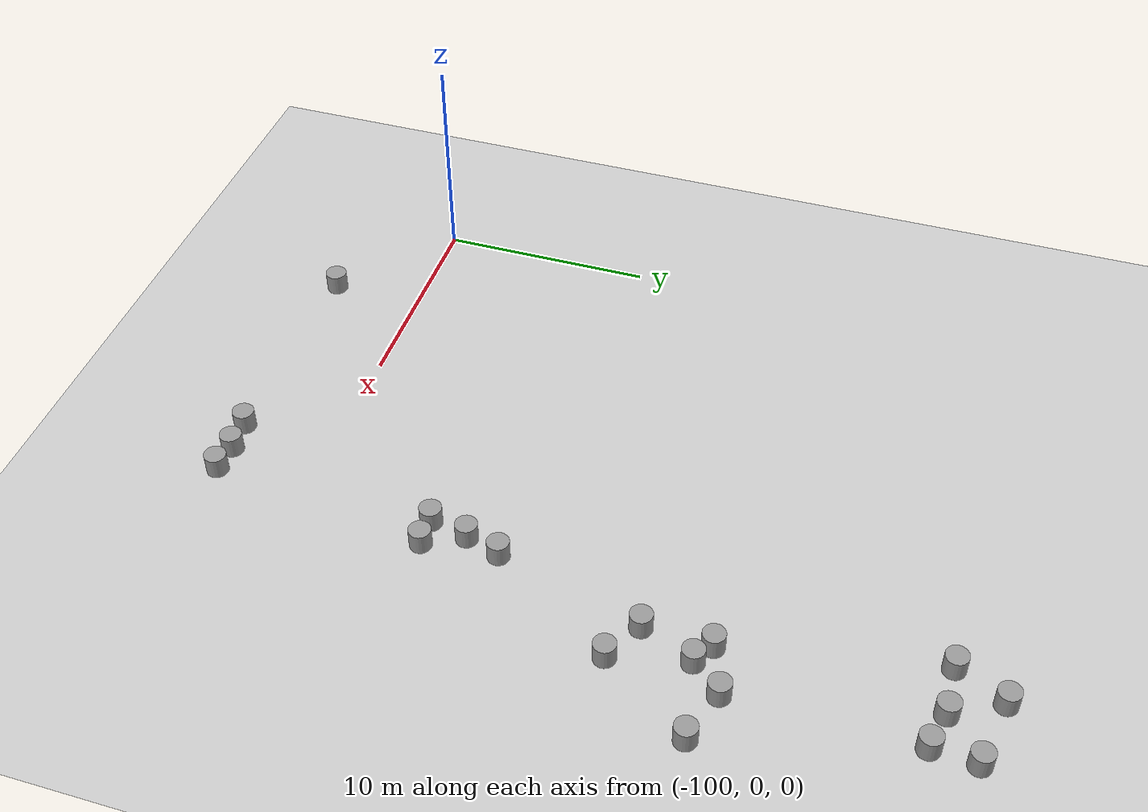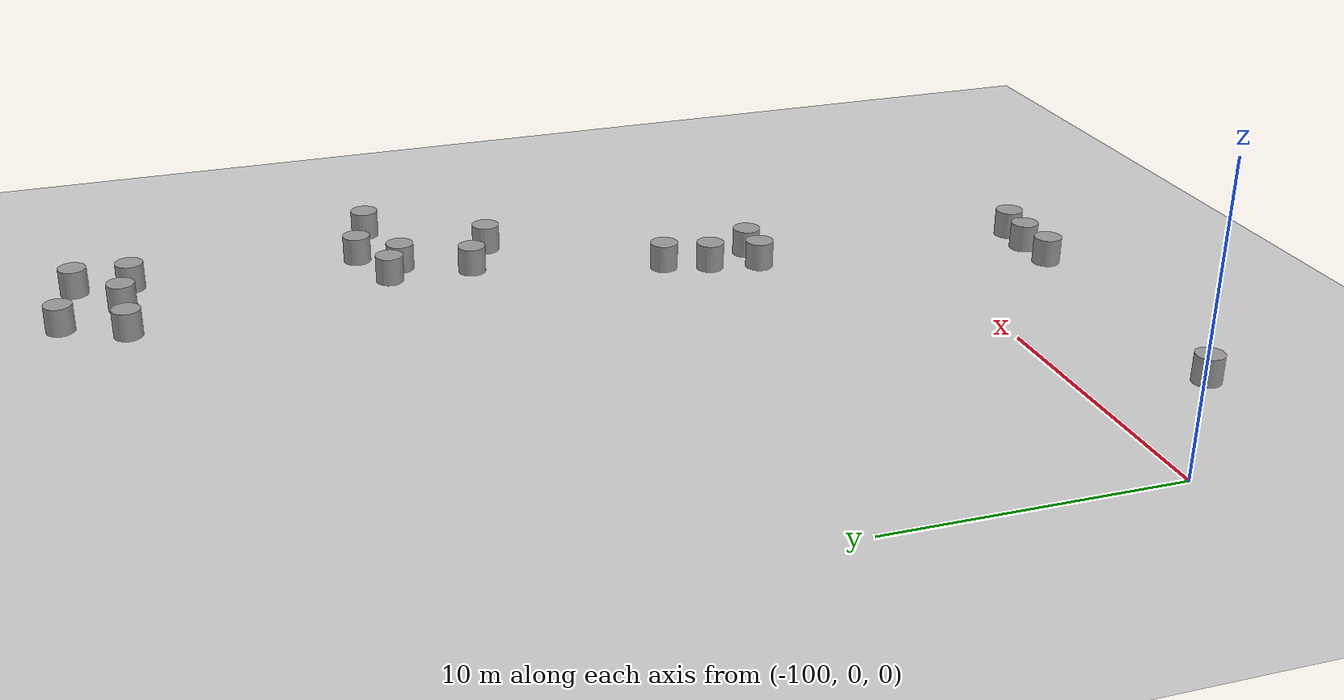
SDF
<sdf version="1.7">
 <world name="default">
  <model name="ground_plane">
   <static>1</static>
   <link name="link">
    <collision name="collision">
     <geometry><plane><normal>0 0 1</normal><size>300 300</size></plane></geometry>
     <surface><friction><ode><mu>100</mu><mu2>50</mu2></ode></friction></surface>
    </collision>
    <visual name="visual">
     <cast_shadows>0</cast_shadows>
     <geometry><plane><normal>0 0 1</normal><size>300 300</size></plane></geometry>
     <material>
      <script><uri>file://media/materials/scripts/gazebo.material</uri><name>Gazebo/Grey</name></script>
     </material>
    </visual>
   </link>
  </model>
  <model name="unit_cylinder_28">
   <pose>-78.2745 28.5454 0.499883 0 -0 0</pose>
   <link name="link">
    <inertial>
     <mass>1</mass>
     <inertia><ixx>0.145833</ixx><ixy>0</ixy><ixz>0</ixz><iyy>0.145833</iyy><iyz>0</iyz><izz>0.125</izz></inertia>
    </inertial>
    <collision name="collision">
     <geometry><cylinder><radius>0.5</radius><length>1</length></cylinder></geometry>
    </collision>
    <visual name="visual">
     <geometry><cylinder><radius>0.5</radius><length>1</length></cylinder></geometry>
     <material>
      <script><name>Gazebo/Grey</name><uri>file://media/materials/scripts/gazebo.material</uri></script>
     </material>
    </visual>
   </link>
  </model>
  <model name="unit_cylinder_29">
   <pose>-79.4438 30.6994 0.499883 0 -0 0</pose>
   <link name="link">
    <inertial>
     <mass>1</mass>
     <inertia><ixx>0.145833</ixx><ixy>0</ixy><ixz>0</ixz><iyy>0.145833</iyy><iyz>0</iyz><izz>0.125</izz></inertia>
    </inertial>
    <collision name="collision">
     <geometry><cylinder><radius>0.5</radius><length>1</length></cylinder></geometry>
    </collision>
    <visual name="visual">
     <geometry><cylinder><radius>0.5</radius><length>1</length></cylinder></geometry>
     <material>
      <script><name>Gazebo/Grey</name><uri>file://media/materials/scripts/gazebo.material</uri></script>
     </material>
    </visual>
   </link>
  </model>
  <model name="unit_cylinder_31">
   <pose>-78.7694 16.1385 0.499883 0 -0 -0.002985</pose>
   <link name="link">
    <inertial>
     <mass>1</mass>
     <inertia><ixx>0.145833</ixx><ixy>0</ixy><ixz>0</ixz><iyy>0.145833</iyy><iyz>0</iyz><izz>0.125</izz></inertia>
    </inertial>
    <collision name="collision">
     <geometry><cylinder><radius>0.5</radius><length>1</length></cylinder></geometry>
    </collision>
    <visual name="visual">
     <geometry><cylinder><radius>0.5</radius><length>1</length></cylinder></geometry>
     <material>
      <script><name>Gazebo/Grey</name><uri>file://media/materials/scripts/gazebo.material</uri></script>
     </material>
    </visual>
   </link>
  </model>
  <model name="unit_cylinder_33">
   <pose>-80.6173 9.36238 0.499883 0 -0 0</pose>
   <link name="link">
    <inertial>
     <mass>1</mass>
     <inertia><ixx>0.145833</ixx><ixy>0</ixy><ixz>0</ixz><iyy>0.145833</iyy><iyz>0</iyz><izz>0.125</izz></inertia>
    </inertial>
    <collision name="collision">
     <geometry><cylinder><radius>0.5</radius><length>1</length></cylinder></geometry>
    </collision>
    <visual name="visual">
     <geometry><cylinder><radius>0.5</radius><length>1</length></cylinder></geometry>
     <material>
      <script><name>Gazebo/Grey</name><uri>file://media/materials/scripts/gazebo.material</uri></script>
     </material>
    </visual>
   </link>
  </model>
  <model name="unit_cylinder_35">
   <pose>-82.9536 -4.14407 0.499883 0 -0 0</pose>
   <link name="link">
    <inertial>
     <mass>1</mass>
     <inertia><ixx>0.145833</ixx><ixy>0</ixy><ixz>0</ixz><iyy>0.145833</iyy><iyz>0</iyz><izz>0.125</izz></inertia>
    </inertial>
    <collision name="collision">
     <geometry><cylinder><radius>0.5</radius><length>1</length></cylinder></geometry>
    </collision>
    <visual name="visual">
     <geometry><cylinder><radius>0.5</radius><length>1</length></cylinder></geometry>
     <material>
      <script><name>Gazebo/Grey</name><uri>file://media/materials/scripts/gazebo.material</uri></script>
     </material>
    </visual>
   </link>
  </model>
  <model name="unit_cylinder_36">
   <pose>-81.6164 -4.2345 0.499883 0 -0 0</pose>
   <link name="link">
    <inertial>
     <mass>1</mass>
     <inertia><ixx>0.145833</ixx><ixy>0</ixy><ixz>0</ixz><iyy>0.145833</iyy><iyz>0</iyz><izz>0.125</izz></inertia>
    </inertial>
    <collision name="collision">
     <geometry><cylinder><radius>0.5</radius><length>1</length></cylinder></geometry>
    </collision>
    <visual name="visual">
     <geometry><cylinder><radius>0.5</radius><length>1</length></cylinder></geometry>
     <material>
      <script><name>Gazebo/Grey</name><uri>file://media/materials/scripts/gazebo.material</uri></script>
     </material>
    </visual>
   </link>
  </model>
  <model name="unit_cylinder_37">
   <pose>-84.4442 -4.25985 0.499883 0 -0 0</pose>
   <link name="link">
    <inertial>
     <mass>1</mass>
     <inertia><ixx>0.145833</ixx><ixy>0</ixy><ixz>0</ixz><iyy>0.145833</iyy><iyz>0</iyz><izz>0.125</izz></inertia>
    </inertial>
    <collision name="collision">
     <geometry><cylinder><radius>0.5</radius><length>1</length></cylinder></geometry>
    </collision>
    <visual name="visual">
     <geometry><cylinder><radius>0.5</radius><length>1</length></cylinder></geometry>
     <material>
      <script><name>Gazebo/Grey</name><uri>file://media/materials/scripts/gazebo.material</uri></script>
     </material>
    </visual>
   </link>
  </model>
  <model name="unit_cylinder_64">
   <pose>-81.5285 5.97267 0.499883 0 -0 0</pose>
   <link name="link">
    <inertial>
     <mass>1</mass>
     <inertia><ixx>0.145833</ixx><ixy>0</ixy><ixz>0</ixz><iyy>0.145833</iyy><iyz>0</iyz><izz>0.125</izz></inertia>
    </inertial>
    <collision name="collision">
     <geometry><cylinder><radius>0.5</radius><length>1</length></cylinder></geometry>
    </collision>
    <visual name="visual">
     <geometry><cylinder><radius>0.5</radius><length>1</length></cylinder></geometry>
     <material>
      <script><name>Gazebo/Grey</name><uri>file://media/materials/scripts/gazebo.material</uri></script>
     </material>
    </visual>
   </link>
  </model>
  <model name="unit_cylinder_65">
   <pose>-80.2534 5.98911 0.499883 0 -0 0</pose>
   <link name="link">
    <inertial>
     <mass>1</mass>
     <inertia><ixx>0.145833</ixx><ixy>0</ixy><ixz>0</ixz><iyy>0.145833</iyy><iyz>0</iyz><izz>0.125</izz></inertia>
    </inertial>
    <collision name="collision">
     <geometry><cylinder><radius>0.5</radius><length>1</length></cylinder></geometry>
    </collision>
    <visual name="visual">
     <geometry><cylinder><radius>0.5</radius><length>1</length></cylinder></geometry>
     <material>
      <script><name>Gazebo/Grey</name><uri>file://media/materials/scripts/gazebo.material</uri></script>
     </material>
    </visual>
   </link>
  </model>
  <model name="unit_cylinder_67">
   <pose>-94.6699 -4.1942 0.499883 0 -0 0</pose>
   <link name="link">
    <inertial>
     <mass>1</mass>
     <inertia><ixx>0.145833</ixx><ixy>0</ixy><ixz>0</ixz><iyy>0.145833</iyy><iyz>0</iyz><izz>0.125</izz></inertia>
    </inertial>
    <collision name="collision">
     <geometry><cylinder><radius>0.5</radius><length>1</length></cylinder></geometry>
    </collision>
    <visual name="visual">
     <geometry><cylinder><radius>0.5</radius><length>1</length></cylinder></geometry>
     <material>
      <script><name>Gazebo/Grey</name><uri>file://media/materials/scripts/gazebo.material</uri></script>
     </material>
    </visual>
   </link>
  </model>
  <model name="unit_cylinder_74">
   <pose>-78.705 19.167 0.499883 0 0 -1.91616</pose>
   <link name="link">
    <inertial>
     <mass>1</mass>
     <inertia><ixx>0.145833</ixx><ixy>0</ixy><ixz>0</ixz><iyy>0.145833</iyy><iyz>0</iyz><izz>0.125</izz></inertia>
    </inertial>
    <collision name="collision">
     <geometry><cylinder><radius>0.5</radius><length>1</length></cylinder></geometry>
    </collision>
    <visual name="visual">
     <geometry><cylinder><radius>0.5</radius><length>1</length></cylinder></geometry>
     <material>
      <script><name>Gazebo/Grey</name><uri>file://media/materials/scripts/gazebo.material</uri></script>
     </material>
    </visual>
   </link>
  </model>
  <model name="unit_cylinder_76">
   <pose>-74.1738 19.2143 0.499883 0 -0 0</pose>
   <link name="link">
    <inertial>
     <mass>1</mass>
     <inertia><ixx>0.145833</ixx><ixy>0</ixy><ixz>0</ixz><iyy>0.145833</iyy><iyz>0</iyz><izz>0.125</izz></inertia>
    </inertial>
    <collision name="collision">
     <geometry><cylinder><radius>0.5</radius><length>1</length></cylinder></geometry>
    </collision>
    <visual name="visual">
     <geometry><cylinder><radius>0.5</radius><length>1</length></cylinder></geometry>
     <material>
      <script><name>Gazebo/Grey</name><uri>file://media/materials/scripts/gazebo.material</uri></script>
     </material>
    </visual>
   </link>
  </model>
  <model name="unit_cylinder_77">
   <pose>-81.1282 7.75211 0.499883 0 -0 0</pose>
   <link name="link">
    <inertial>
     <mass>1</mass>
     <inertia><ixx>0.145833</ixx><ixy>0</ixy><ixz>0</ixz><iyy>0.145833</iyy><iyz>0</iyz><izz>0.125</izz></inertia>
    </inertial>
    <collision name="collision">
     <geometry><cylinder><radius>0.5</radius><length>1</length></cylinder></geometry>
    </collision>
    <visual name="visual">
     <geometry><cylinder><radius>0.5</radius><length>1</length></cylinder></geometry>
     <material>
      <script><name>Gazebo/Grey</name><uri>file://media/materials/scripts/gazebo.material</uri></script>
     </material>
    </visual>
   </link>
  </model>
  <model name="unit_cylinder_99">
   <pose>-76.5175 19.9498 0.499883 0 -0 0</pose>
   <link name="link">
    <inertial>
     <mass>1</mass>
     <inertia><ixx>0.145833</ixx><ixy>0</ixy><ixz>0</ixz><iyy>0.145833</iyy><iyz>0</iyz><izz>0.125</izz></inertia>
    </inertial>
    <collision name="collision">
     <geometry><cylinder><radius>0.5</radius><length>1</length></cylinder></geometry>
    </collision>
    <visual name="visual">
     <geometry><cylinder><radius>0.5</radius><length>1</length></cylinder></geometry>
     <material>
      <script><name>Gazebo/Grey</name><uri>file://media/materials/scripts/gazebo.material</uri></script>
     </material>
    </visual>
   </link>
  </model>
  <model name="unit_cylinder_103">
   <pose>-77.7327 18.5842 0.499883 0 -0 0</pose>
   <link name="link">
    <inertial>
     <mass>1</mass>
     <inertia><ixx>0.145833</ixx><ixy>0</ixy><ixz>0</ixz><iyy>0.145833</iyy><iyz>0</iyz><izz>0.125</izz></inertia>
    </inertial>
    <collision name="collision">
     <geometry><cylinder><radius>0.5</radius><length>1</length></cylinder></geometry>
    </collision>
    <visual name="visual">
     <geometry><cylinder><radius>0.5</radius><length>1</length></cylinder></geometry>
     <material>
      <script><name>Gazebo/Grey</name><uri>file://media/materials/scripts/gazebo.material</uri></script>
     </material>
    </visual>
   </link>
  </model>
  <model name="unit_cylinder_27">
   <pose>-76.9355 15.1548 0.499883 0 -0 0</pose>
   <link name="link">
    <inertial>
     <mass>1</mass>
     <inertia><ixx>0.145833</ixx><ixy>0</ixy><ixz>0</ixz><iyy>0.145833</iyy><iyz>0</iyz><izz>0.125</izz></inertia>
    </inertial>
    <collision name="collision">
     <geometry><cylinder><radius>0.5</radius><length>1</length></cylinder></geometry>
    </collision>
    <visual name="visual">
     <geometry><cylinder><radius>0.5</radius><length>1</length></cylinder></geometry>
     <material>
      <script><name>Gazebo/Grey</name><uri>file://media/materials/scripts/gazebo.material</uri></script>
     </material>
    </visual>
   </link>
  </model>
  <model name="unit_cylinder_26">
   <pose>-80.5292 28.5274 0.499883 0 -0 0</pose>
   <link name="link">
    <inertial>
     <mass>1</mass>
     <inertia><ixx>0.145833</ixx><ixy>0</ixy><ixz>0</ixz><iyy>0.145833</iyy><iyz>0</iyz><izz>0.125</izz></inertia>
    </inertial>
    <collision name="collision">
     <geometry><cylinder><radius>0.5</radius><length>1</length></cylinder></geometry>
    </collision>
    <visual name="visual">
     <geometry><cylinder><radius>0.5</radius><length>1</length></cylinder></geometry>
     <material>
      <script><name>Gazebo/Grey</name><uri>file://media/materials/scripts/gazebo.material</uri></script>
     </material>
    </visual>
   </link>
  </model>
  <model name="unit_cylinder_97">
   <pose>-76.4031 30.0781 0.499883 0 -0 0</pose>
   <link name="link">
    <inertial>
     <mass>1</mass>
     <inertia><ixx>0.145833</ixx><ixy>0</ixy><ixz>0</ixz><iyy>0.145833</iyy><iyz>0</iyz><izz>0.125</izz></inertia>
    </inertial>
    <collision name="collision">
     <geometry><cylinder><radius>0.5</radius><length>1</length></cylinder></geometry>
    </collision>
    <visual name="visual">
     <geometry><cylinder><radius>0.5</radius><length>1</length></cylinder></geometry>
     <material>
      <script><name>Gazebo/Grey</name><uri>file://media/materials/scripts/gazebo.material</uri></script>
     </material>
    </visual>
   </link>
  </model>
  <model name="unit_cylinder_104">
   <pose>-76.5432 28.1227 0.499883 0 -0 0</pose>
   <link name="link">
    <inertial>
     <mass>1</mass>
     <inertia><ixx>0.145833</ixx><ixy>0</ixy><ixz>0</ixz><iyy>0.145833</iyy><iyz>0</iyz><izz>0.125</izz></inertia>
    </inertial>
    <collision name="collision">
     <geometry><cylinder><radius>0.5</radius><length>1</length></cylinder></geometry>
    </collision>
    <visual name="visual">
     <geometry><cylinder><radius>0.5</radius><length>1</length></cylinder></geometry>
     <material>
      <script><name>Gazebo/Grey</name><uri>file://media/materials/scripts/gazebo.material</uri></script>
     </material>
    </visual>
   </link>
  </model>
 </world>
</sdf>
